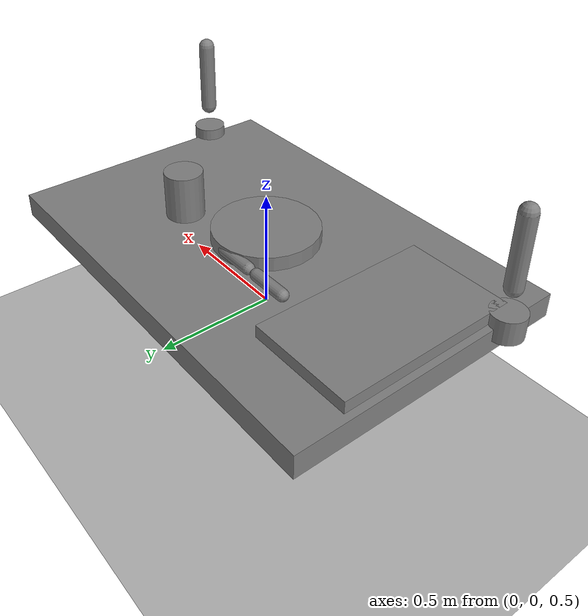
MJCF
<mujoco model="tablemind_so101_bimanual">
  <compiler angle="radian" coordinate="local"/>
  <option gravity="0 0 -9.81"/>
  <worldbody>
    <light pos="0 0 2.5" dir="0 0 -1" diffuse="1 1 1"/>
    <geom name="floor" type="plane" size="3 3 .05" rgba="0.7 0.7 0.7 1"/>
    <body name="table" pos="0 0 0.75">
      <geom type="box" size="0.9 0.6 0.05"/>
      <body name="drawer" pos="-0.65 0 0.05">
        <joint name="drawer_slide" type="slide" axis="1 0 0"/>
        <geom type="box" size="0.22 0.38 0.05"/>
      </body>
    </body>
    <body name="so101_left_base" pos="-0.9 -0.35 0.8">
      <joint name="left_j1" type="hinge" axis="0 0 1"/>
      <geom type="cylinder" size="0.07 0.05"/>
      <body name="left_link1" pos="0 0 0.15"><joint name="left_j2" type="hinge" axis="0 1 0"/><geom type="capsule" fromto="0 0 0 0 0 0.3" size="0.035"/></body>
    </body>
    <body name="so101_right_base" pos="0.9 -0.35 0.8">
      <joint name="right_j1" type="hinge" axis="0 0 1"/>
      <geom type="cylinder" size="0.07 0.05"/>
      <body name="right_link1" pos="0 0 0.15"><joint name="right_j2" type="hinge" axis="0 1 0"/><geom type="capsule" fromto="0 0 0 0 0 0.3" size="0.035"/></body>
    </body>
    <geom name="plate" type="cylinder" pos="0 0 0.84" size="0.22 0.03"/>
    <geom name="cup" type="cylinder" pos="0.35 0.15 0.91" size="0.08 0.10"/>
    <geom name="spoon" type="capsule" fromto="-0.35 0.2 0.84 -0.20 0.2 0.84" size="0.025"/>
    <geom name="fork" type="capsule" fromto="-0.15 0.2 0.84 0.0 0.2 0.84" size="0.025"/>
  </worldbody>
</mujoco>
